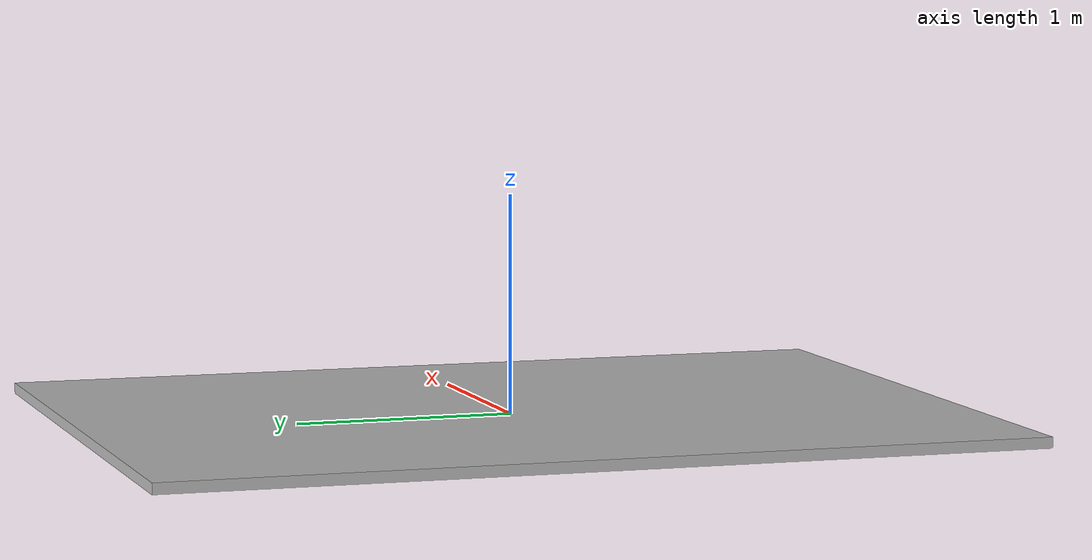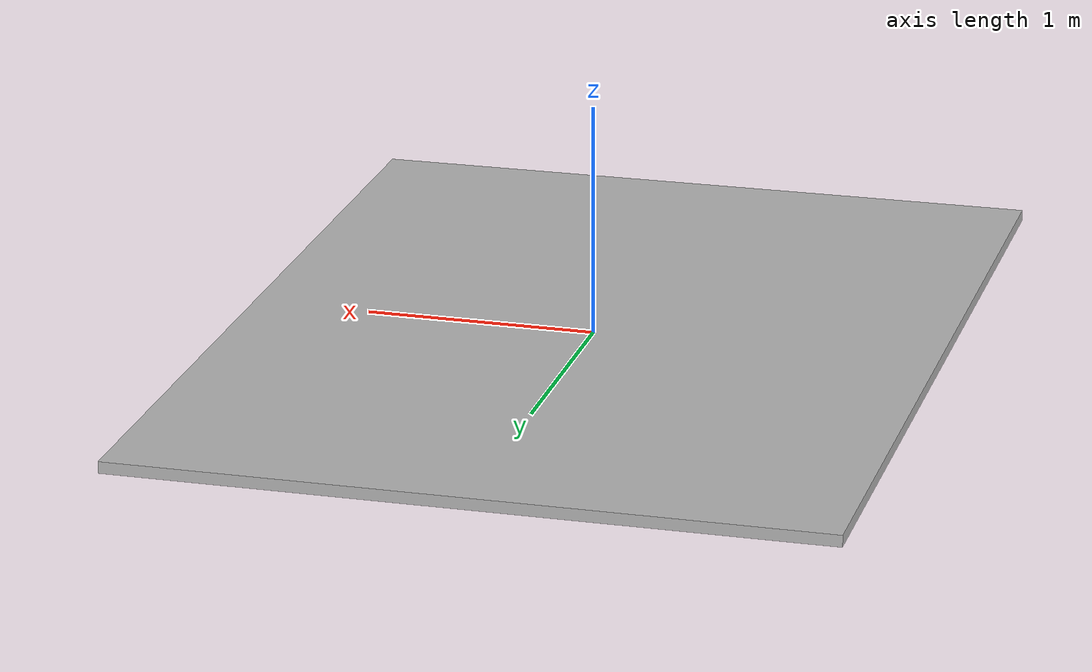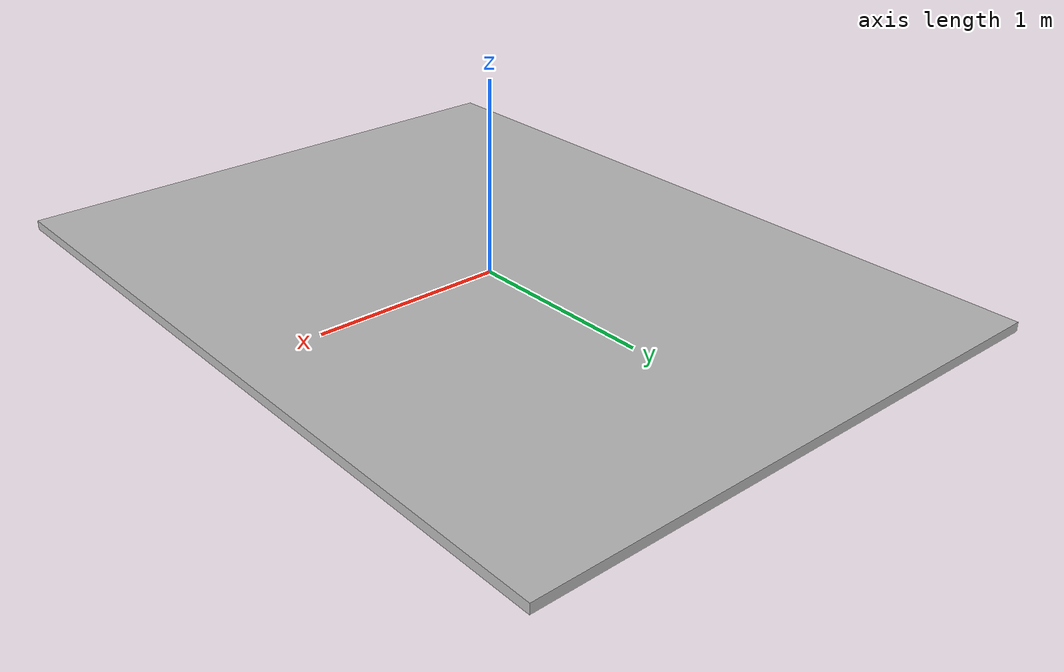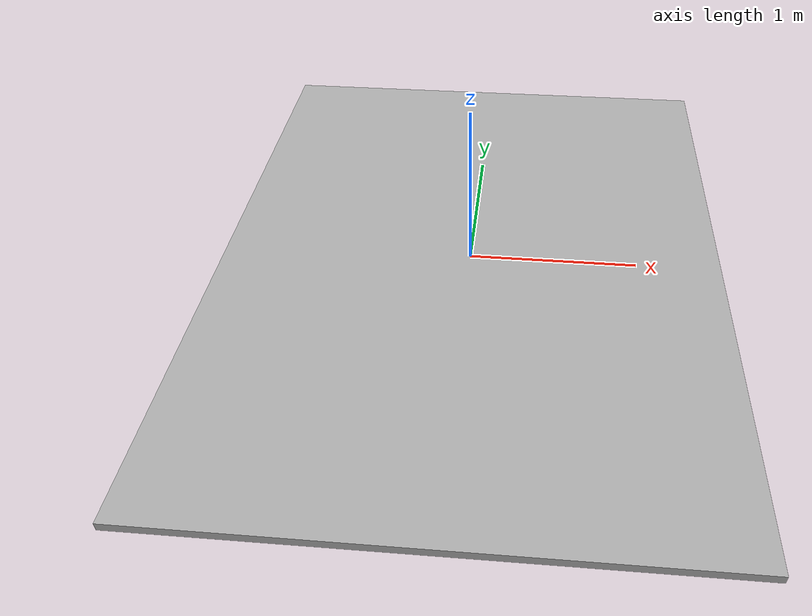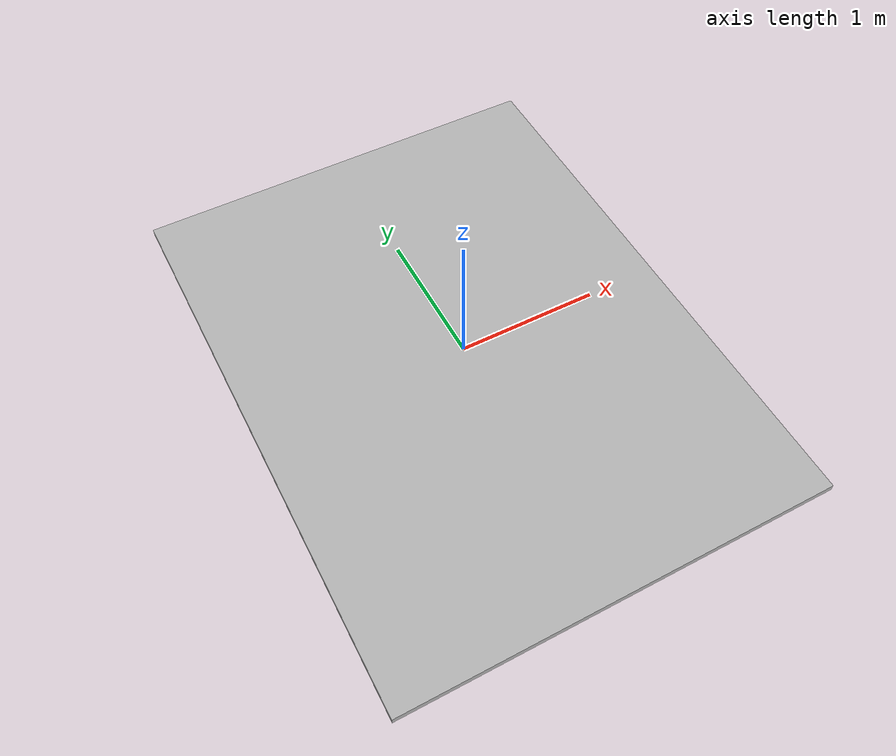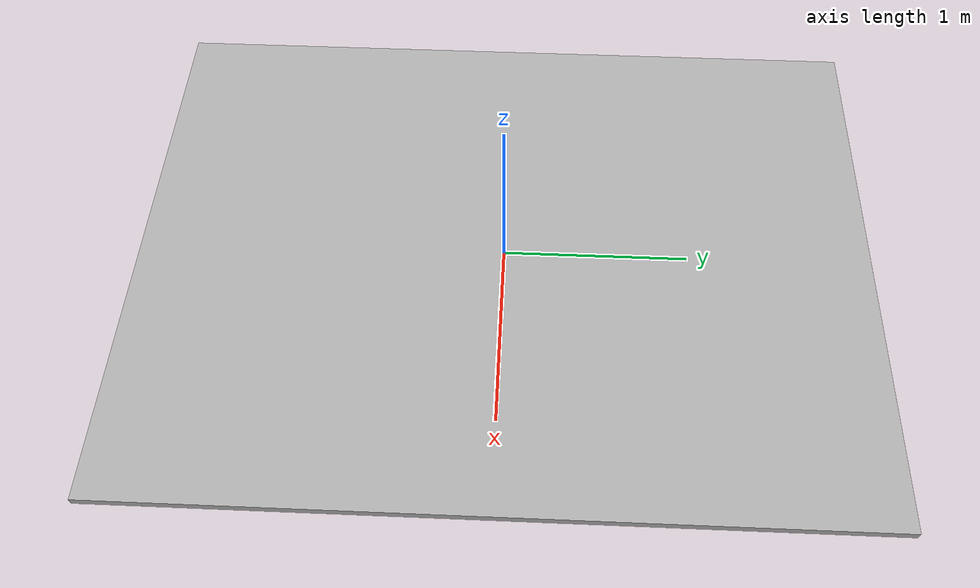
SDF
<?xml version="1.0" ?>
<sdf version="1.5">
  <model name="calibration_board">
    <static>true</static>
    <link name="link">
      <collision name="collision">
        <geometry>
          <box>
            <size>3 3 0.05</size>
          </box>
        </geometry>
      </collision>
      <visual name="visual">
        <pose>0.0 0.0 0 0 0 0</pose>
        <cast_shadows>false</cast_shadows>
        <geometry>
          <box>
            <size>3 3.993506493 0.05</size>
          </box>
        </geometry>
        <material>
          <script>
            <uri>model://calibration_chessboard/materials/scripts</uri>
            <uri>model://calibration_chessboard/materials/textures</uri>
            <name>vrc/marker</name>
          </script>
        </material>
      </visual>
    </link>
  </model>
</sdf>
